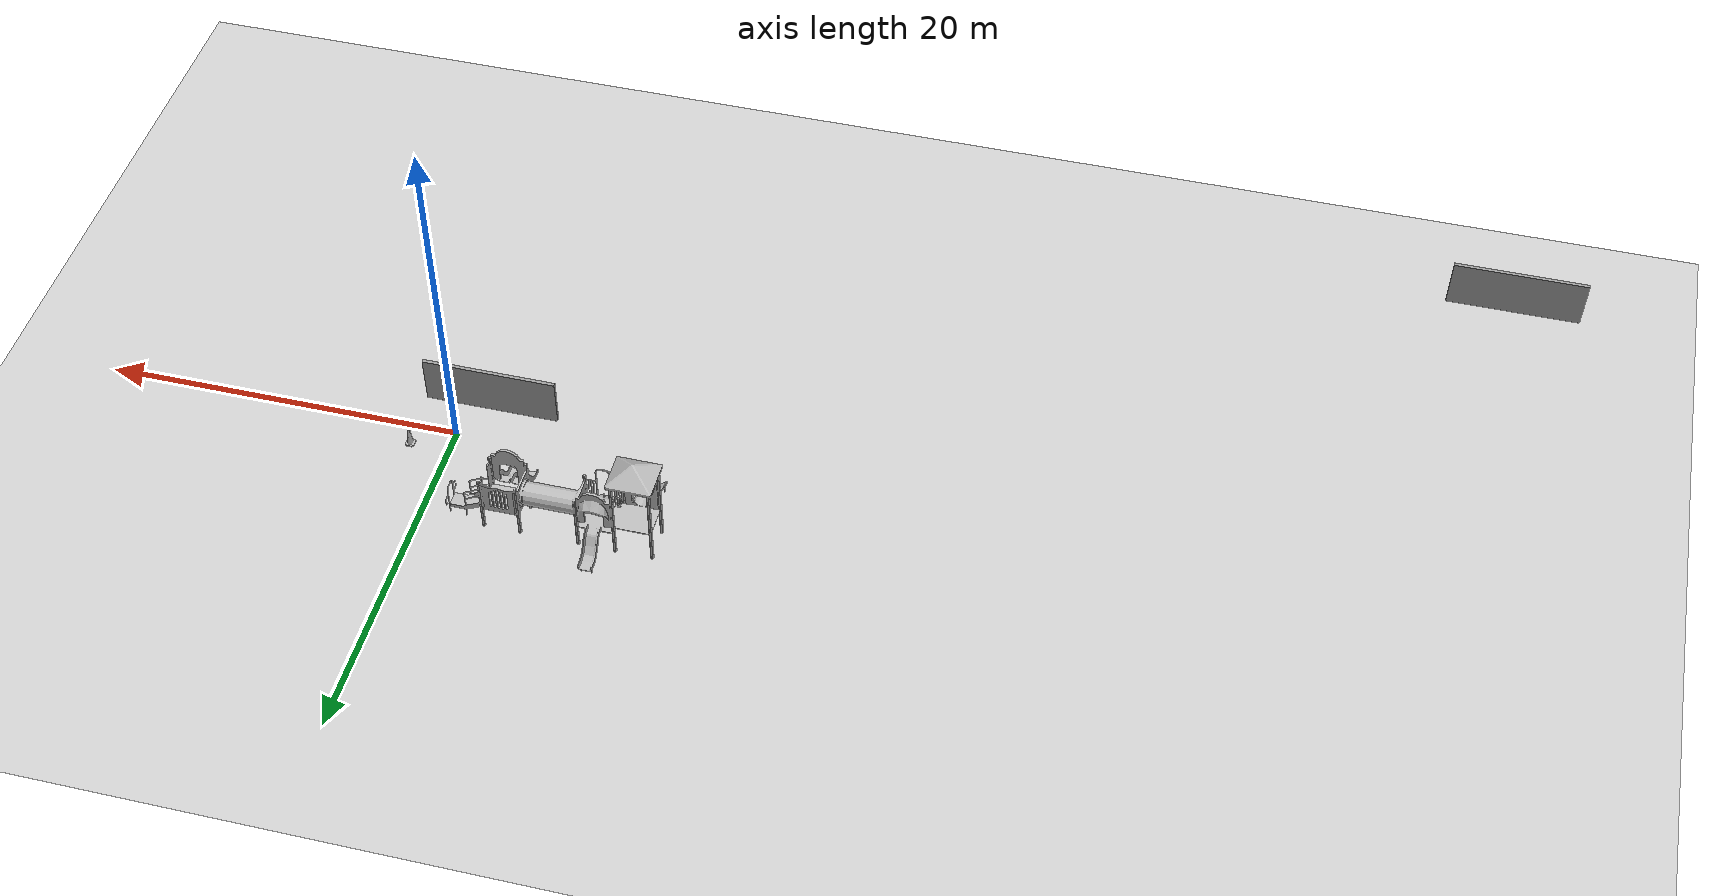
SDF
<sdf version="1.7">
 <world name="default">
  <light name="sun" type="directional">
   <pose>0 0 10 0 -0 0</pose>
   <diffuse>0.8 0.8 0.8 1</diffuse>
   <specular>0.2 0.2 0.2 1</specular>
   <attenuation>
    <range>1000</range>
    <constant>0.9</constant>
    <linear>0.01</linear>
    <quadratic>0.001</quadratic>
   </attenuation>
   <direction>-0.5 0.1 -0.9</direction>
   <spot><inner_angle>0</inner_angle><outer_angle>0</outer_angle><falloff>0</falloff></spot>
  </light>
  <model name="ground_plane">
   <static>1</static>
   <link name="link">
    <collision name="collision">
     <geometry><plane><normal>0 0 1</normal><size>100 100</size></plane></geometry>
     <surface>
      <contact><collide_bitmask>65535</collide_bitmask></contact>
      <friction><ode><mu>100</mu><mu2>50</mu2></ode></friction>
     </surface>
    </collision>
    <visual name="visual">
     <cast_shadows>0</cast_shadows>
     <geometry><plane><normal>0 0 1</normal><size>100 100</size></plane></geometry>
     <material>
      <script><uri>file://media/materials/scripts/gazebo.material</uri><name>Gazebo/Grey</name></script>
     </material>
    </visual>
   </link>
  </model>
  <gravity>0 0 -9.8</gravity>
  <magnetic_field>6e-06 2.3e-05 -4.2e-05</magnetic_field>
  <atmosphere type="adiabatic"/>
  <physics type="ode">
   <max_step_size>0.001</max_step_size>
   <real_time_factor>1</real_time_factor>
   <real_time_update_rate>1000</real_time_update_rate>
  </physics>
  <scene><ambient>0.4 0.4 0.4 1</ambient><background>0.7 0.7 0.7 1</background><shadows>1</shadows></scene>
  <spherical_coordinates>
   <surface_model>EARTH_WGS84</surface_model>
   <latitude_deg>0</latitude_deg>
   <longitude_deg>0</longitude_deg>
   <elevation>0</elevation>
   <heading_deg>0</heading_deg>
  </spherical_coordinates>
  <model name="Construction Cone">
   <link name="link">
    <collision name="collision">
     <geometry>
      <mesh><scale>10 10 10</scale><uri>model://construction_cone/meshes/construction_cone.dae</uri></mesh>
     </geometry>
    </collision>
    <visual name="visual">
     <geometry>
      <mesh><scale>10 10 10</scale><uri>model://construction_cone/meshes/construction_cone.dae</uri></mesh>
     </geometry>
    </visual>
    <inertial>
     <inertia><ixx>1</ixx><ixy>0</ixy><ixz>0</ixz><iyy>1</iyy><iyz>0</iyz><izz>1</izz></inertia>
     <mass>1</mass>
    </inertial>
   </link>
   <pose>2.23077 1.22937 -0 0 -0 0</pose>
  </model>
  <model name="grey_wall">
   <static>1</static>
   <link name="link">
    <pose>0 0 1.4 0 -0 0</pose>
    <collision name="collision"><geometry><box><size>7.5 0.2 2.8</size></box></geometry></collision>
    <visual name="visual">
     <cast_shadows>0</cast_shadows>
     <geometry><box><size>7.5 0.2 2.8</size></box></geometry>
     <material>
      <script>
       <uri>model://grey_wall/materials/scripts</uri>
       <uri>model://grey_wall/materials/textures</uri>
       <name>vrc/grey_wall</name>
      </script>
     </material>
    </visual>
   </link>
   <pose>-1.24735 -2.32083 0 0 -0 0</pose>
  </model>
  <model name="grey_wall_0">
   <static>1</static>
   <link name="link">
    <pose>0 0 1.4 0 -0 0</pose>
    <collision name="collision"><geometry><box><size>7.5 0.2 2.8</size></box></geometry></collision>
    <visual name="visual">
     <cast_shadows>0</cast_shadows>
     <geometry><box><size>7.5 0.2 2.8</size></box></geometry>
     <material>
      <script>
       <uri>model://grey_wall/materials/scripts</uri>
       <uri>model://grey_wall/materials/textures</uri>
       <name>vrc/grey_wall</name>
      </script>
     </material>
    </visual>
   </link>
   <pose>-54.9838 -23.4576 0 0 -0 0</pose>
  </model>
  <model name="playground">
   <static>1</static>
   <link name="link">
    <collision name="collision">
     <geometry><mesh><uri>model://playground/meshes/playground.dae</uri></mesh></geometry>
    </collision>
    <visual name="visual">
     <geometry><mesh><uri>model://playground/meshes/playground.dae</uri></mesh></geometry>
    </visual>
   </link>
   <pose>-7.21821 4.49359 0 0 -0 0</pose>
  </model>
 </world>
</sdf>
